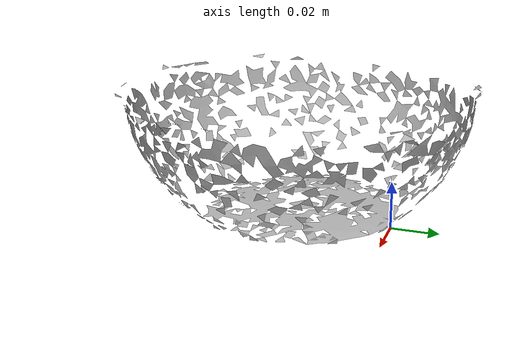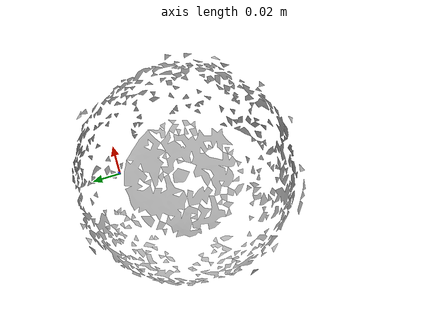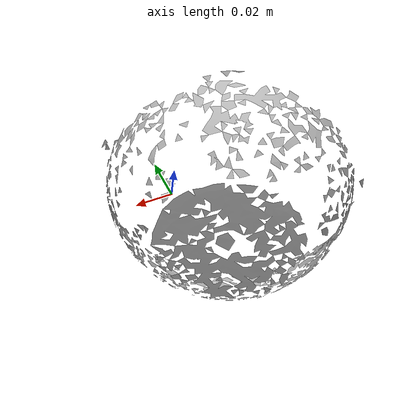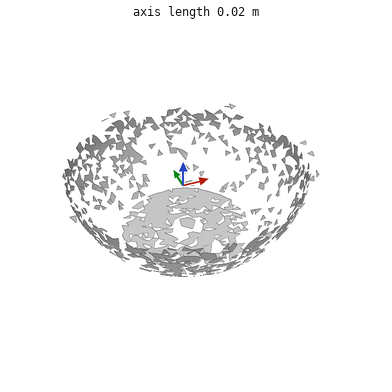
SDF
<?xml version="1.0" ?>
<sdf version="1.4">
  <model name='ycb_024_bowl'>
    <link name='body'>
      <inertial>
        <mass>0.147</mass>
        <pose>-0.0142724847632 -0.0457284210257 0.0267723480073 0 0 0</pose>
        <inertia>
          <ixx>0.000346042290575</ixx>
          <ixy>5.49631336913e-06</ixy>
          <ixz>-4.98452538725e-09</ixz>
          <iyy>0.000338849645298</iyy>
          <iyz>5.13542565829e-06</iyz>
          <izz>0.000577704973684</izz>
        </inertia>
      </inertial>
      <visual name='ycb_024_bowl_visual'>
        <pose>0 0 0 0 0 0</pose>
        <geometry>
          <mesh>
            <uri>model://ycb_024_bowl/meshes/textured.dae</uri>
          </mesh>
        </geometry>
      </visual>
      <collision name='ycb_024_bowl_collision'>
        <pose>0 0 0 0 0 0</pose>
        <geometry>
          <mesh>
            <uri>model://ycb_024_bowl/meshes/nontextured.stl</uri>
          </mesh>
        </geometry>
        <max_contacts>10</max_contacts>
      </collision>
    </link>
  </model>
</sdf>
